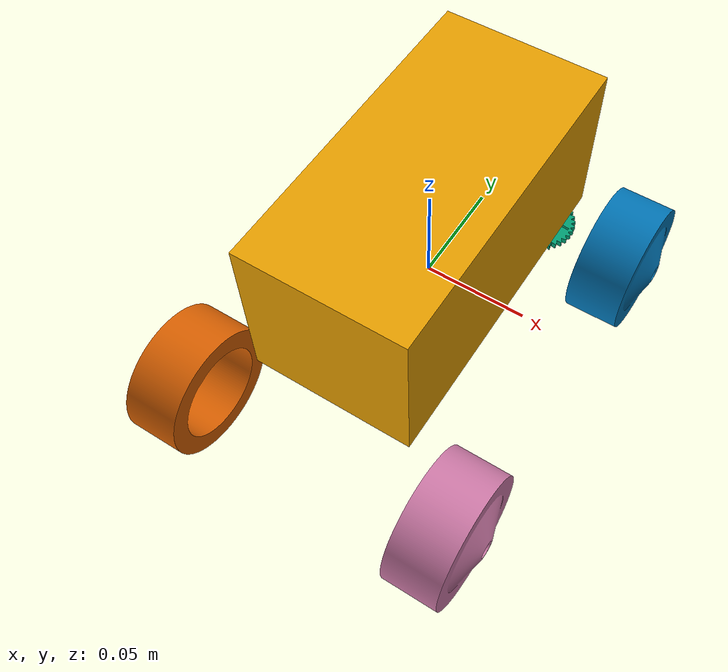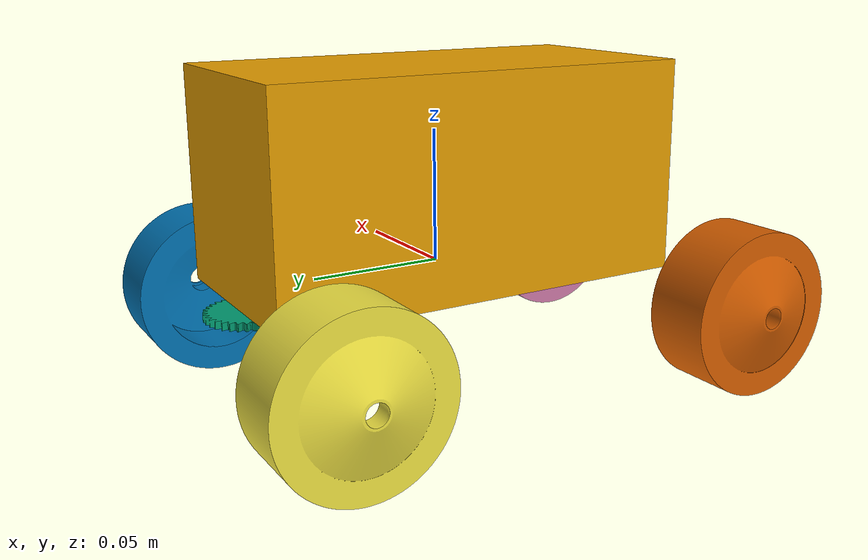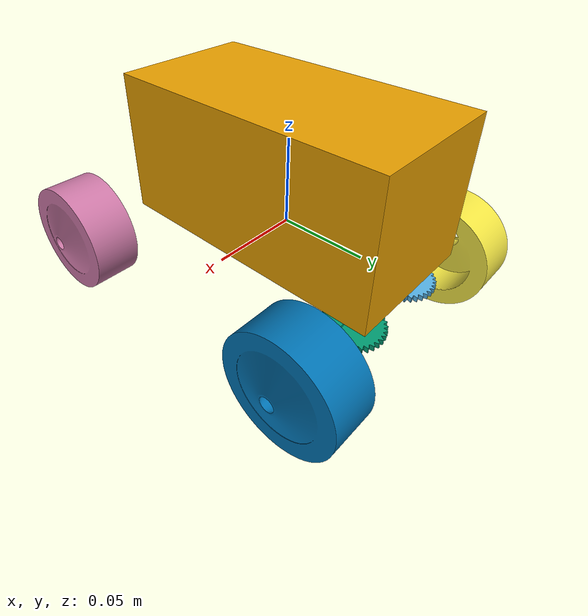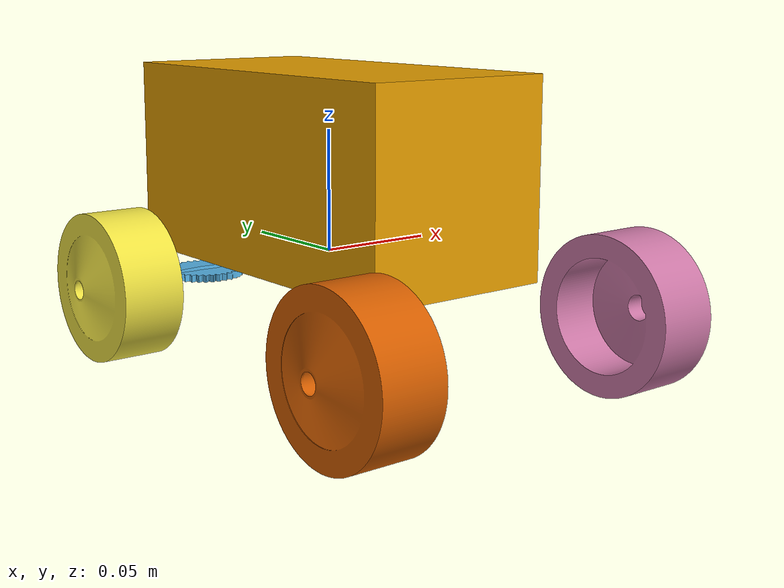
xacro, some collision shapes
<?xml version="1.0"?>
<robot name="car_like" xmlns:xacro="http://ros.org/wiki/xacro">

  <xacro:arg name="pkg" default="car_like_description"/>
  <xacro:arg name="ns"  default="car_like"/>

  <!-- ================= CONTATO ================= -->
  <!-- Direção "frente" do seu modelo é +Y (pelos origins dos eixos) -->
  <xacro:arg name="mu_long" default="1.2"/>   <!-- atrito na direção do movimento (fdir1) -->
  <xacro:arg name="mu_lat"  default="3.0"/>   <!-- atrito lateral (evita derrapar ao esterçar) -->

  <!-- slip: deixe slip2 (lateral) BEM pequeno pra não "patinar de lado" -->
  <xacro:arg name="wheel_slip1" default="0.01"/>  <!-- longitudinal -->
  <xacro:arg name="wheel_slip2" default="0.001"/> <!-- lateral -->

  <xacro:arg name="body_mu1" default="0.2"/>
  <xacro:arg name="body_mu2" default="0.2"/>

  <!-- parâmetros de contato ODE (reduz jitter) -->
  <xacro:arg name="contact_kp" default="50000"/>
  <xacro:arg name="contact_kd" default="1.0"/>
  <xacro:arg name="contact_min_depth" default="0.001"/>
  <xacro:arg name="contact_max_vel" default="0.1"/>

  <!-- ================= COLISÃO DO CHASSI ================= -->
  <xacro:arg name="base_col_x" default="0.08"/>
  <xacro:arg name="base_col_y" default="0.16"/>
  <xacro:arg name="base_col_z" default="0.08"/>
  <xacro:arg name="base_col_center_z" default="0.035"/>

  <!-- ================= RODAS ================= -->
  <xacro:arg name="wheel_radius" default="0.0315"/>
  <xacro:arg name="wheel_width"  default="0.0315"/>

  <!-- sinais: +command => pra frente (ajuste se necessário) -->
  <xacro:arg name="rear_left_sign"  default="-1"/>
  <xacro:arg name="rear_right_sign" default="-1"/>

  <xacro:property name="mesh_dir" value="package://$(arg pkg)/urdf/meshes"/>

  <!-- ================= LINKS ================= -->
  <link name="base_link">
    <visual>
      <origin xyz="0 0 0" rpy="0 0 0"/>
      <geometry><mesh filename="${mesh_dir}/base_link.dae"/></geometry>
    </visual>

    <collision>
      <origin xyz="0 0 $(arg base_col_center_z)" rpy="0 0 0"/>
      <geometry>
        <box size="$(arg base_col_x) $(arg base_col_y) $(arg base_col_z)"/>
      </geometry>
    </collision>

    <inertial>
      <origin xyz="0 0 -0.01" rpy="0 0 0"/>
      <mass value="0.35"/>
      <inertia ixx="0.00093" ixy="0" ixz="0"
               iyy="0.00037" iyz="0"
               izz="0.00093"/>
    </inertial>
  </link>

  <!-- steer links: sem colisão -->
  <link name="front_left_steer_link">
    <visual>
      <origin xyz="0 0 0" rpy="0 0 0"/>
      <geometry><mesh filename="${mesh_dir}/front_left_steer_link.dae"/></geometry>
    </visual>
    <inertial>
      <origin xyz="0 0 0" rpy="0 0 0"/>
      <mass value="0.008"/>
      <inertia ixx="0.000003" ixy="0" ixz="0"
               iyy="0.000003" iyz="0"
               izz="0.000003"/>
    </inertial>
  </link>

  <link name="front_right_steer_link">
    <visual>
      <origin xyz="0 0 0" rpy="0 0 0"/>
      <geometry><mesh filename="${mesh_dir}/front_right_steer_link.dae"/></geometry>
    </visual>
    <inertial>
      <origin xyz="0 0 0" rpy="0 0 0"/>
      <mass value="0.008"/>
      <inertia ixx="0.000003" ixy="0" ixz="0"
               iyy="0.000003" iyz="0"
               izz="0.000003"/>
    </inertial>
  </link>

  <!-- macro roda (colisão cilindro alinhada no eixo X) -->
  <xacro:macro name="wheel_link" params="name mesh">
    <link name="${name}">
      <visual>
        <origin xyz="0 0 0" rpy="0 0 0"/>
        <geometry><mesh filename="${mesh_dir}/${mesh}"/></geometry>
      </visual>

      <collision>
        <!-- URDF cylinder default eixo Z; rotate pra ficar no eixo X -->
        <origin xyz="0 0 0" rpy="0 1.570796 0"/>
        <geometry><cylinder radius="$(arg wheel_radius)" length="$(arg wheel_width)"/></geometry>
      </collision>

      <inertial>
        <origin xyz="0 0 0" rpy="0 0 0"/>
        <mass value="0.03"/>
        <inertia ixx="0.000015" ixy="0" ixz="0"
                 iyy="0.000010" iyz="0"
                 izz="0.000010"/>
      </inertial>
    </link>
  </xacro:macro>

  <xacro:wheel_link name="front_left_wheel"  mesh="front_left_wheel.dae"/>
  <xacro:wheel_link name="front_right_wheel" mesh="front_right_wheel.dae"/>
  <xacro:wheel_link name="rear_left_wheel"   mesh="rear_left_wheel.dae"/>
  <xacro:wheel_link name="rear_right_wheel"  mesh="rear_right_wheel.dae"/>

  <!-- ================= JOINTS ================= -->
  <joint name="front_left_steer_joint" type="revolute">
    <parent link="base_link"/>
    <child  link="front_left_steer_link"/>
    <origin xyz="-0.065239 0.066357 -0.017635" rpy="0 0 0"/>
    <axis xyz="0 0 1"/>
    <!-- mais torque pra realmente esterçar sob carga -->
    <limit lower="-0.7" upper="0.7" effort="15.0" velocity="4.0"/>
    <dynamics damping="1.0" friction="0.0"/>
  </joint>

  <joint name="front_right_steer_joint" type="revolute">
    <parent link="base_link"/>
    <child  link="front_right_steer_link"/>
    <origin xyz="0.072524 0.066228 -0.017635" rpy="0 0 0"/>
    <axis xyz="0 0 1"/>
    <limit lower="-0.7" upper="0.7" effort="15.0" velocity="4.0"/>
    <dynamics damping="1.0" friction="0.0"/>
  </joint>

  <!-- rodas dianteiras livres (MAS com damping/friction pra não "pegar vida") -->
  <joint name="front_left_wheel_joint" type="continuous">
    <parent link="front_left_steer_link"/>
    <child  link="front_left_wheel"/>
    <origin xyz="0 0 0" rpy="0 0 0"/>
    <axis xyz="1 0 0"/>
    <limit effort="1.0" velocity="80.0"/>
    <dynamics damping="0.10" friction="0.05"/>
  </joint>

  <joint name="front_right_wheel_joint" type="continuous">
    <parent link="front_right_steer_link"/>
    <child  link="front_right_wheel"/>
    <origin xyz="0 0 0" rpy="0 0 0"/>
    <axis xyz="1 0 0"/>
    <limit effort="1.0" velocity="80.0"/>
    <dynamics damping="0.10" friction="0.05"/>
  </joint>

  <!-- drive traseiro (EFFORT) -->
  <joint name="rear_left_wheel_joint" type="continuous">
    <parent link="base_link"/>
    <child  link="rear_left_wheel"/>
    <origin xyz="-0.065282 -0.097208 -0.017635" rpy="0 0 0"/>
    <axis xyz="$(arg rear_left_sign) 0 0"/>
    <!-- mais torque p/ não ficar lento -->
    <limit effort="5.0" velocity="200.0"/>
    <dynamics damping="0.12" friction="0.06"/>
  </joint>

  <joint name="rear_right_wheel_joint" type="continuous">
    <parent link="base_link"/>
    <child  link="rear_right_wheel"/>
    <origin xyz="0.072523 -0.097281 -0.017635" rpy="0 0 0"/>
    <axis xyz="$(arg rear_right_sign) 0 0"/>
    <limit effort="5.0" velocity="200.0"/>
    <dynamics damping="0.12" friction="0.06"/>
  </joint>

  <!-- ================= GAZEBO: atrito / slip / damping ================= -->
  <gazebo reference="base_link">
    <mu1>$(arg body_mu1)</mu1>
    <mu2>$(arg body_mu2)</mu2>
    <linearDamping>0.05</linearDamping>
    <angularDamping>0.06</angularDamping>
  </gazebo>

  <!-- Função: definir direção de atrito principal = "frente" (+Y) -->
  <xacro:macro name="wheel_contact" params="ref">
    <gazebo reference="${ref}">
      <!-- anisotrópico (ODE): mu1 ao longo de fdir1, mu2 perpendicular -->
      <fdir1>0 1 0</fdir1>
      <mu1>$(arg mu_long)</mu1>
      <mu2>$(arg mu_lat)</mu2>

      <slip1>$(arg wheel_slip1)</slip1>
      <slip2>$(arg wheel_slip2)</slip2>

      <kp>$(arg contact_kp)</kp>
      <kd>$(arg contact_kd)</kd>
      <minDepth>$(arg contact_min_depth)</minDepth>
      <maxVel>$(arg contact_max_vel)</maxVel>
    </gazebo>
  </xacro:macro>

  <xacro:wheel_contact ref="front_left_wheel"/>
  <xacro:wheel_contact ref="front_right_wheel"/>
  <xacro:wheel_contact ref="rear_left_wheel"/>
  <xacro:wheel_contact ref="rear_right_wheel"/>

  <!-- ================= TRANSMISSIONS (EFFORT) ================= -->
  <transmission name="tr_front_left_steer">
    <type>transmission_interface/SimpleTransmission</type>
    <joint name="front_left_steer_joint">
      <hardwareInterface>hardware_interface/EffortJointInterface</hardwareInterface>
    </joint>
    <actuator name="act_front_left_steer">
      <hardwareInterface>hardware_interface/EffortJointInterface</hardwareInterface>
      <mechanicalReduction>1</mechanicalReduction>
    </actuator>
  </transmission>

  <transmission name="tr_front_right_steer">
    <type>transmission_interface/SimpleTransmission</type>
    <joint name="front_right_steer_joint">
      <hardwareInterface>hardware_interface/EffortJointInterface</hardwareInterface>
    </joint>
    <actuator name="act_front_right_steer">
      <hardwareInterface>hardware_interface/EffortJointInterface</hardwareInterface>
      <mechanicalReduction>1</mechanicalReduction>
    </actuator>
  </transmission>

  <transmission name="tr_rear_left_wheel">
    <type>transmission_interface/SimpleTransmission</type>
    <joint name="rear_left_wheel_joint">
      <hardwareInterface>hardware_interface/EffortJointInterface</hardwareInterface>
    </joint>
    <actuator name="act_rear_left_wheel">
      <hardwareInterface>hardware_interface/EffortJointInterface</hardwareInterface>
      <mechanicalReduction>1</mechanicalReduction>
    </actuator>
  </transmission>

  <transmission name="tr_rear_right_wheel">
    <type>transmission_interface/SimpleTransmission</type>
    <joint name="rear_right_wheel_joint">
      <hardwareInterface>hardware_interface/EffortJointInterface</hardwareInterface>
    </joint>
    <actuator name="act_rear_right_wheel">
      <hardwareInterface>hardware_interface/EffortJointInterface</hardwareInterface>
      <mechanicalReduction>1</mechanicalReduction>
    </actuator>
  </transmission>

  <!-- ================= PLUGIN ros_control ================= -->
  <gazebo>
    <plugin name="gazebo_ros_control" filename="libgazebo_ros_control.so">
      <robotNamespace>$(arg ns)</robotNamespace>
      <robotParam>/robot_description</robotParam>
      <!-- mais responsivo e menos "aos pulos" -->
      <controlPeriod>0.001</controlPeriod>
      <robotSimType>gazebo_ros_control/DefaultRobotHWSim</robotSimType>
    </plugin>
  </gazebo>

  <!-- estabilidade ODE -->
  <gazebo reference="front_left_steer_joint"><implicitSpringDamper>1</implicitSpringDamper></gazebo>
  <gazebo reference="front_right_steer_joint"><implicitSpringDamper>1</implicitSpringDamper></gazebo>
  <gazebo reference="front_left_wheel_joint"><implicitSpringDamper>1</implicitSpringDamper></gazebo>
  <gazebo reference="front_right_wheel_joint"><implicitSpringDamper>1</implicitSpringDamper></gazebo>
  <gazebo reference="rear_left_wheel_joint"><implicitSpringDamper>1</implicitSpringDamper></gazebo>
  <gazebo reference="rear_right_wheel_joint"><implicitSpringDamper>1</implicitSpringDamper></gazebo>

</robot>
